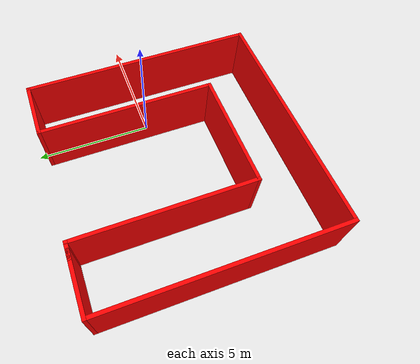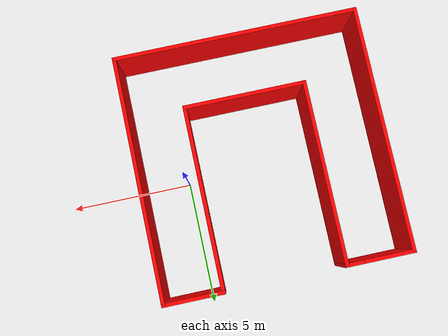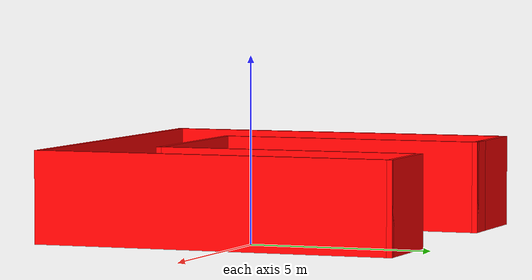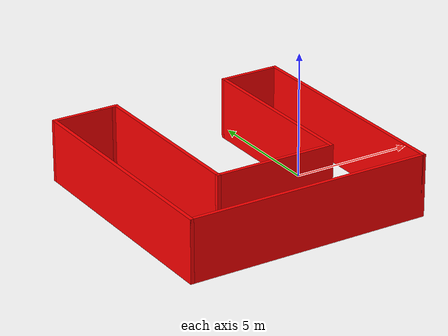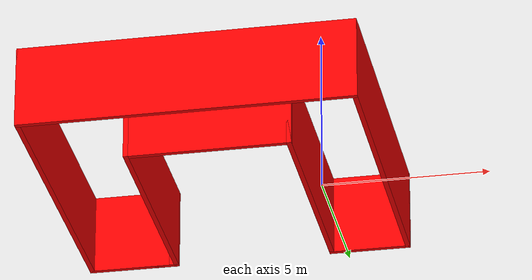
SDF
<?xml version='1.0'?>
<sdf version='1.6'>
  <model name='test_world'>
    <pose frame=''>-3.05438 -0.387666 0 0 -0 0</pose>
    <link name='Wall_41'>
      <collision name='Wall_41_Collision'>
        <geometry>
          <box>
            <size>2.5 0.15 2.5</size>
          </box>
        </geometry>
        <pose frame=''>0 0 1.25 0 -0 0</pose>
      </collision>
      <visual name='Wall_41_Visual'>
        <pose frame=''>0 0 1.25 0 -0 0</pose>
        <geometry>
          <box>
            <size>2.5 0.15 2.5</size>
          </box>
        </geometry>
        <material>
          <script>
            <uri>file://media/materials/scripts/gazebo.material</uri>
            <name>Gazebo/Grey</name>
          </script>
          <ambient>1 0 0 1</ambient>
        </material>
        <meta>
          <layer>0</layer>
        </meta>
      </visual>
      <pose frame=''>-3.75 4.925 0 0 -0 3.14159</pose>
    </link>
    <link name='Wall_42'>
      <collision name='Wall_42_Collision'>
        <geometry>
          <box>
            <size>10 0.15 2.5</size>
          </box>
        </geometry>
        <pose frame=''>0 0 1.25 0 -0 0</pose>
      </collision>
      <visual name='Wall_42_Visual'>
        <pose frame=''>0 0 1.25 0 -0 0</pose>
        <geometry>
          <box>
            <size>10 0.15 2.5</size>
          </box>
        </geometry>
        <material>
          <script>
            <uri>file://media/materials/scripts/gazebo.material</uri>
            <name>Gazebo/Grey</name>
          </script>
          <ambient>1 0 0 1</ambient>
        </material>
        <meta>
          <layer>0</layer>
        </meta>
      </visual>
      <pose frame=''>-4.925 0 0 0 0 -1.5708</pose>
    </link>
    <link name='Wall_43'>
      <collision name='Wall_43_Collision'>
        <geometry>
          <box>
            <size>10 0.15 2.5</size>
          </box>
        </geometry>
        <pose frame=''>0 0 1.25 0 -0 0</pose>
      </collision>
      <visual name='Wall_43_Visual'>
        <pose frame=''>0 0 1.25 0 -0 0</pose>
        <geometry>
          <box>
            <size>10 0.15 2.5</size>
          </box>
        </geometry>
        <material>
          <script>
            <uri>file://media/materials/scripts/gazebo.material</uri>
            <name>Gazebo/Grey</name>
          </script>
          <ambient>1 0 0 1</ambient>
        </material>
        <meta>
          <layer>0</layer>
        </meta>
      </visual>
      <pose frame=''>0 -4.925 0 0 -0 0</pose>
    </link>
    <link name='Wall_44'>
      <collision name='Wall_44_Collision'>
        <geometry>
          <box>
            <size>10 0.15 2.5</size>
          </box>
        </geometry>
        <pose frame=''>0 0 1.25 0 -0 0</pose>
      </collision>
      <visual name='Wall_44_Visual'>
        <pose frame=''>0 0 1.25 0 -0 0</pose>
        <geometry>
          <box>
            <size>10 0.15 2.5</size>
          </box>
        </geometry>
        <material>
          <script>
            <uri>file://media/materials/scripts/gazebo.material</uri>
            <name>Gazebo/Grey</name>
          </script>
          <ambient>1 0 0 1</ambient>
        </material>
        <meta>
          <layer>0</layer>
        </meta>
      </visual>
      <pose frame=''>4.925 0 0 0 -0 1.5708</pose>
    </link>
    <link name='Wall_45'>
      <collision name='Wall_45_Collision'>
        <geometry>
          <box>
            <size>2.5 0.15 2.5</size>
          </box>
        </geometry>
        <pose frame=''>0 0 1.25 0 -0 0</pose>
      </collision>
      <visual name='Wall_45_Visual'>
        <pose frame=''>0 0 1.25 0 -0 0</pose>
        <geometry>
          <box>
            <size>2.5 0.15 2.5</size>
          </box>
        </geometry>
        <material>
          <script>
            <uri>file://media/materials/scripts/gazebo.material</uri>
            <name>Gazebo/Grey</name>
          </script>
          <ambient>1 0 0 1</ambient>
        </material>
        <meta>
          <layer>0</layer>
        </meta>
      </visual>
      <pose frame=''>3.75 4.925 0 0 -0 3.14159</pose>
    </link>
    <link name='Wall_46'>
      <collision name='Wall_46_Collision'>
        <geometry>
          <box>
            <size>7.5 0.15 2.5</size>
          </box>
        </geometry>
        <pose frame=''>0 0 1.25 0 -0 0</pose>
      </collision>
      <visual name='Wall_46_Visual'>
        <pose frame=''>0 0 1.25 0 -0 0</pose>
        <geometry>
          <box>
            <size>7.5 0.15 2.5</size>
          </box>
        </geometry>
        <material>
          <script>
            <uri>file://media/materials/scripts/gazebo.material</uri>
            <name>Gazebo/Grey</name>
          </script>
          <ambient>1 0 0 1</ambient>
        </material>
        <meta>
          <layer>0</layer>
        </meta>
      </visual>
      <pose frame=''>2.575 1.25 0 0 0 -1.5708</pose>
    </link>
    <link name='Wall_47'>
      <collision name='Wall_47_Collision'>
        <geometry>
          <box>
            <size>5 0.15 2.5</size>
          </box>
        </geometry>
        <pose frame=''>0 0 1.25 0 -0 0</pose>
      </collision>
      <visual name='Wall_47_Visual'>
        <pose frame=''>0 0 1.25 0 -0 0</pose>
        <geometry>
          <box>
            <size>5 0.15 2.5</size>
          </box>
        </geometry>
        <material>
          <script>
            <uri>file://media/materials/scripts/gazebo.material</uri>
            <name>Gazebo/Grey</name>
          </script>
          <ambient>1 0 0 1</ambient>
        </material>
        <meta>
          <layer>0</layer>
        </meta>
      </visual>
      <pose frame=''>0.15 -2.425 0 0 -0 3.14159</pose>
    </link>
    <link name='Wall_48'>
      <collision name='Wall_48_Collision'>
        <geometry>
          <box>
            <size>7.5 0.15 2.5</size>
          </box>
        </geometry>
        <pose frame=''>0 0 1.25 0 -0 0</pose>
      </collision>
      <visual name='Wall_48_Visual'>
        <pose frame=''>0 0 1.25 0 -0 0</pose>
        <geometry>
          <box>
            <size>7.5 0.15 2.5</size>
          </box>
        </geometry>
        <material>
          <script>
            <uri>file://media/materials/scripts/gazebo.material</uri>
            <name>Gazebo/Grey</name>
          </script>
          <ambient>1 0 0 1</ambient>
        </material>
        <meta>
          <layer>0</layer>
        </meta>
      </visual>
      <pose frame=''>-2.275 1.25 0 0 -0 1.5708</pose>
    </link>
    <link name='Wall_49'>
      <collision name='Wall_49_Collision'>
        <geometry>
          <box>
            <size>0.75 0.15 2.5</size>
          </box>
        </geometry>
        <pose frame=''>0 0 1.25 0 -0 0</pose>
      </collision>
      <visual name='Wall_49_Visual'>
        <pose frame=''>0 0 1.25 0 -0 0</pose>
        <geometry>
          <box>
            <size>0.75 0.15 2.5</size>
          </box>
        </geometry>
        <material>
          <script>
            <uri>file://media/materials/scripts/gazebo.material</uri>
            <name>Gazebo/Grey</name>
          </script>
          <ambient>1 0 0 1</ambient>
        </material>
        <meta>
          <layer>0</layer>
        </meta>
      </visual>
      <pose frame=''>-2.575 4.925 0 0 -0 3.14159</pose>
    </link>
    <static>1</static>
  </model>
</sdf>
